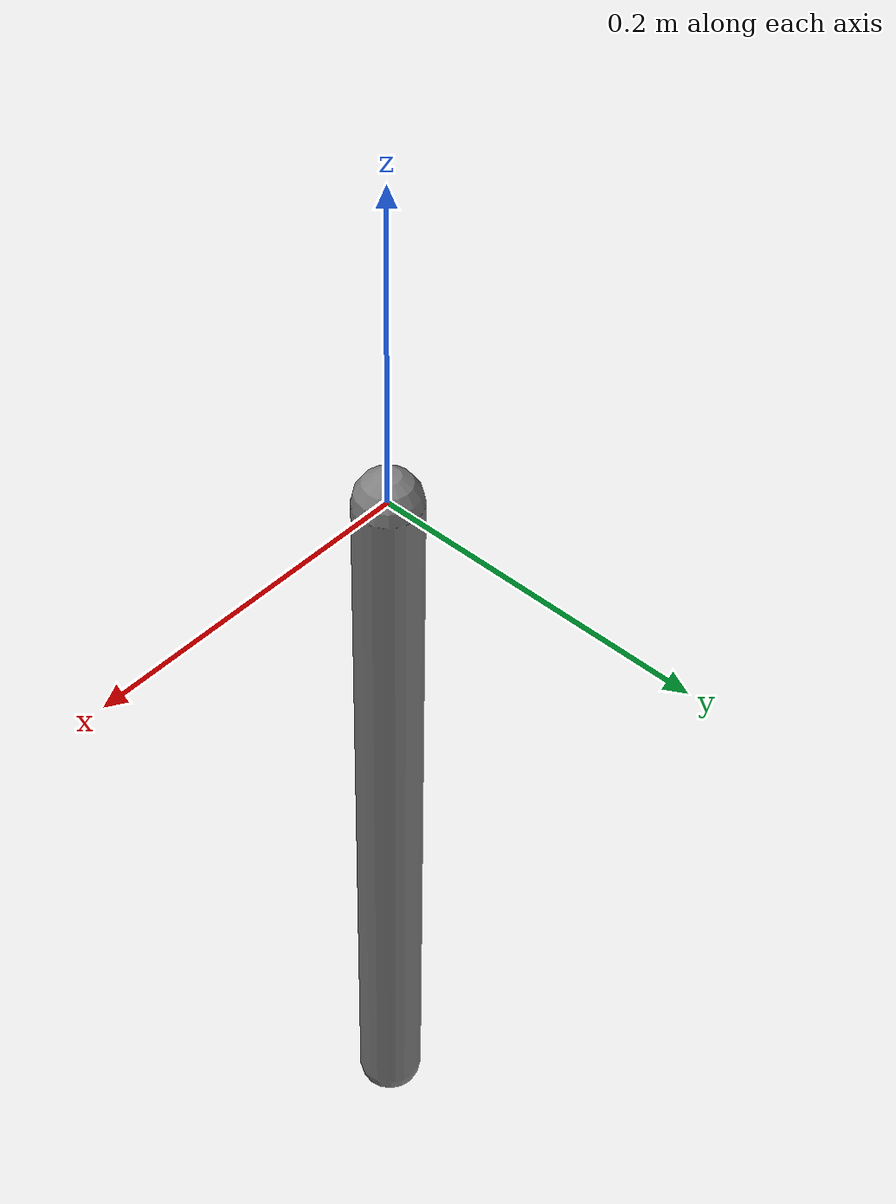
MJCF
<mujoco model="physlab_pendulum">
  <option timestep="0.01"/>
  <worldbody>
    <body name="pendulum" pos="0 0 0">
      <joint name="hinge" type="hinge" axis="0 1 0" damping="0.05"/>
      <geom name="rod" type="capsule" fromto="0 0 0 0 0 -0.5" size="0.02" mass="1"/>
    </body>
  </worldbody>
  <actuator>
    <motor name="hinge_motor" joint="hinge" ctrllimited="true" ctrlrange="-1 1"/>
  </actuator>
</mujoco>
